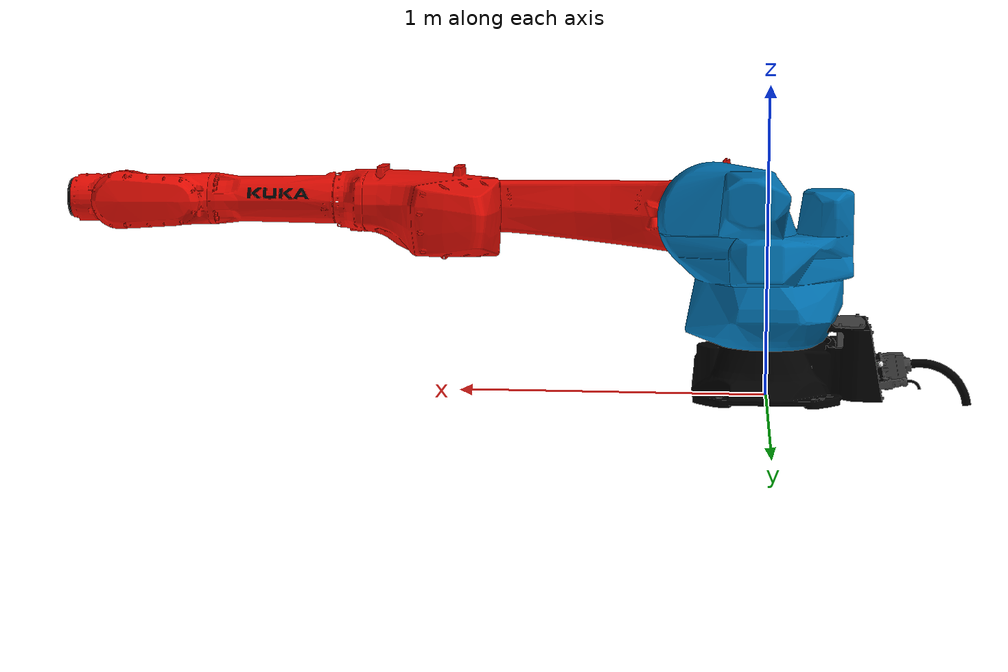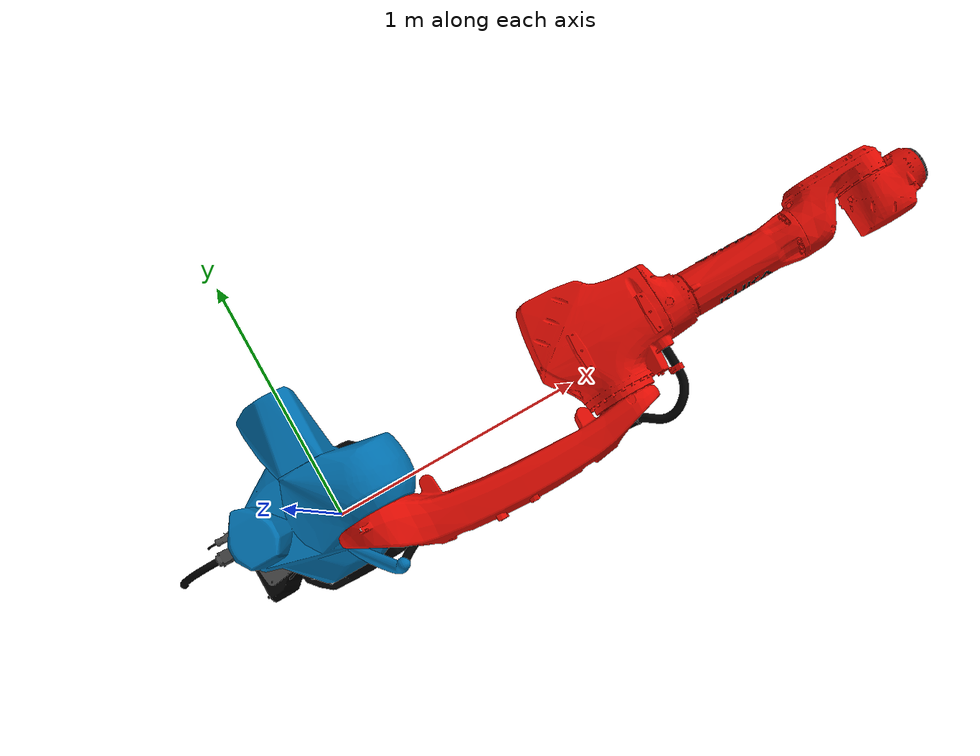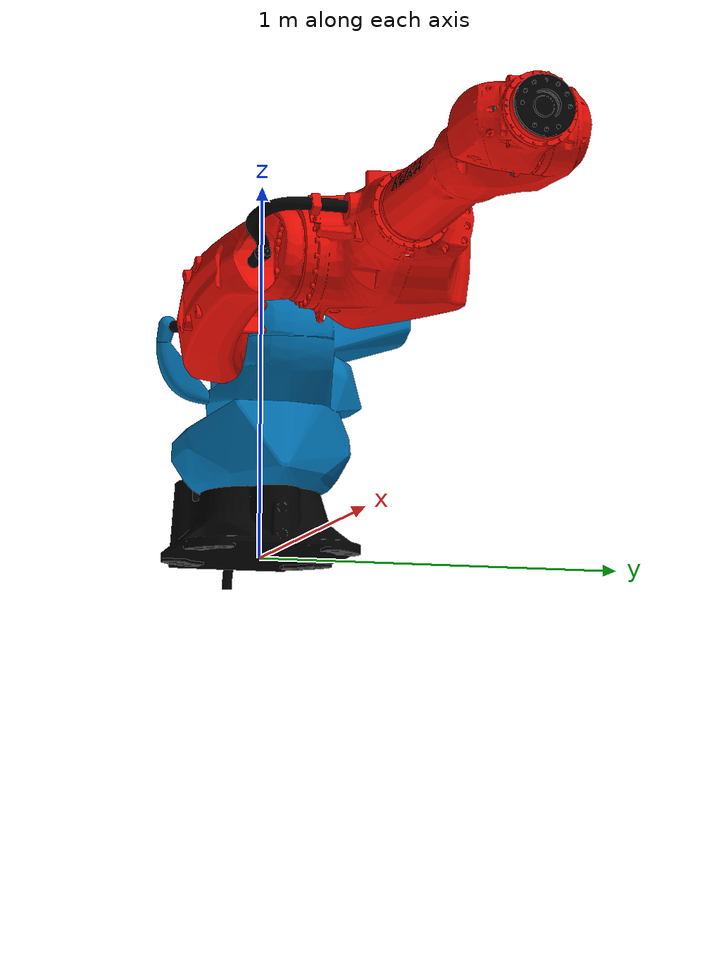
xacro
<?xml version="1.0" encoding="UTF-8"?>
<robot xmlns:xacro="http://ros.org/wiki/xacro" name="kr30_r2100">
  <!-- Import urdf file  -->
  <xacro:include filename="$(find kuka_iontec_support)/urdf/kr30_r2100_macro.xacro"/>
  <xacro:include filename="$(find kuka_iontec_support)/urdf/kr_iontec_ros2_control_macro.xacro"/>
  <!-- Read additional arguments  -->
  <xacro:arg name="driver_version" default="rsi_only"/>
  <xacro:arg name="mode" default="hardware"/>
  <xacro:arg name="gpio_config" default=""/>
  <xacro:arg name="roundtrip_time" default="0"/>
  <xacro:arg name="client_ip" default="0.0.0.0"/>
  <xacro:arg name="client_port" default="59152"/>
  <xacro:arg name="mxa_client_port" default="1337"/>
  <xacro:arg name="controller_ip" default="0.0.0.0"/>
  <xacro:arg name="verify_robot_model" default="true"/>
  <xacro:arg name="prefix" default=""/>
  <xacro:arg name="x" default="0"/>
  <xacro:arg name="y" default="0"/>
  <xacro:arg name="z" default="0"/>
  <xacro:arg name="roll" default="0"/>
  <xacro:arg name="pitch" default="0"/>
  <xacro:arg name="yaw" default="0"/>
  <xacro:arg name="rsi_xml_config_file" default=""/>
  <xacro:kuka_iontec_ros2_control name="$(arg prefix)kr30_r2100" driver_version="$(arg driver_version)" client_ip="$(arg client_ip)" client_port="$(arg client_port)" mxa_client_port="$(arg mxa_client_port)" controller_ip="$(arg controller_ip)" prefix="$(arg prefix)" mode="$(arg mode)" gpio_config="$(arg gpio_config)" roundtrip_time="$(arg roundtrip_time)" verify_robot_model="$(arg verify_robot_model)" rsi_xml_config_file="$(arg rsi_xml_config_file)">
    <ext_axes_ros2_control_joints/>
  </xacro:kuka_iontec_ros2_control>
  <!-- world link -->
  <link name="world"/>
  <!-- robot links, joints -->
  <xacro:kuka_kr30_r2100_robot prefix="$(arg prefix)" package_name="kuka_iontec_support"/>
  <!-- default world - base_link joint -->
  <joint name="$(arg prefix)world-base_link" type="fixed">
    <parent link="world"/>
    <child link="$(arg prefix)base_link"/>
    <origin xyz="$(arg x) $(arg y) $(arg z)" rpy="$(arg roll) $(arg pitch) $(arg yaw)"/>
  </joint>
</robot>

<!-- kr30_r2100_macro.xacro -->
<robot xmlns:xacro="http://www.ros.org/wiki/xacro" name="kr30_r2100">
  <xacro:macro name="kuka_kr30_r2100_robot" params="prefix package_name">
    <link name="${prefix}base"/>
    <link name="${prefix}base_link">
      <collision>
        <geometry>
          <mesh filename="package://${package_name}/meshes/kr30_r2100/collision/base_link.stl"/>
        </geometry>
        <origin rpy="0.0 -0.0 0.0" xyz="0.0 0.0 0.0"/>
      </collision>
      <inertial>
        <inertia ixx="3.21771450042138" ixy="0.0" ixz="0.0" iyy="2.20944166758376" iyz="0.0" izz="3.52194780966785"/>
        <mass value="1.1102E2"/>
        <origin rpy="-0.09552224276473971 0.005165689953881887 1.5692512343174831" xyz="-0.0353407754502021 3.24880558618159E-4 0.169880117603822"/>
      </inertial>
      <visual>
        <geometry>
          <mesh filename="package://${package_name}/meshes/kr30_r2100/visual/base_link.dae"/>
        </geometry>
        <origin rpy="0.0 -0.0 0.0" xyz="0.0 0.0 0.0"/>
      </visual>
    </link>
    <link name="${prefix}flange"/>
    <link name="${prefix}link_1">
      <collision>
        <geometry>
          <mesh filename="package://${package_name}/meshes/kr30_r2100/collision/link_1.stl"/>
        </geometry>
        <origin rpy="-3.141592653589793 0.0 -0.0" xyz="0.0 -2.890166445987754e-17 0.23600000000000002"/>
      </collision>
      <inertial>
        <inertia ixx="5.24555012484584" ixy="0.0" ixz="0.0" iyy="7.5101448256266" iyz="0.0" izz="8.88415818665863"/>
        <mass value="1.72735E2"/>
        <origin rpy="-0.9012026077142694 -0.880518526999153 2.770605684460564" xyz="0.0382984455958549 -0.0308864897096709 -0.235396902770139"/>
      </inertial>
      <visual>
        <geometry>
          <mesh filename="package://${package_name}/meshes/kr30_r2100/visual/link_1.dae"/>
        </geometry>
        <origin rpy="-3.141592653589793 0.0 -0.0" xyz="0.0 -2.890166445987754e-17 0.23600000000000002"/>
      </visual>
    </link>
    <link name="${prefix}link_2">
      <collision>
        <geometry>
          <mesh filename="package://${package_name}/meshes/kr30_r2100/collision/link_2.stl"/>
        </geometry>
        <origin rpy="1.5707963267948968 -0.0 1.5707963267948966" xyz="-0.5750000000000001 -0.175 0.05400000000000006"/>
      </collision>
      <inertial>
        <inertia ixx="15.3115976467419" ixy="0.0" ixz="0.0" iyy="1.25648697469284" iyz="0.0" izz="15.5308363638855"/>
        <mass value="1.0886E2"/>
        <origin rpy="2.0043980356557647 -1.417571259716974 -0.441107113978177" xyz="0.322390685283851 0.0011177475656806899 -0.0921965092779717"/>
      </inertial>
      <visual>
        <geometry>
          <mesh filename="package://${package_name}/meshes/kr30_r2100/visual/link_2.dae"/>
        </geometry>
        <origin rpy="1.5707963267948968 -0.0 1.5707963267948966" xyz="-0.5750000000000001 -0.175 0.05400000000000006"/>
      </visual>
    </link>
    <link name="${prefix}link_3">
      <collision>
        <geometry>
          <mesh filename="package://${package_name}/meshes/kr30_r2100/collision/link_3.stl"/>
        </geometry>
        <origin rpy="1.5707963267948968 -0.0 -0.0" xyz="-0.17500000000000007 1.465 0.15150000000000008"/>
      </collision>
      <inertial>
        <inertia ixx="1.92337293034476" ixy="0.0" ixz="0.0" iyy="1.27849052849714" iyz="0.0" izz="2.39171458731211"/>
        <mass value="7.6987E1"/>
        <origin rpy="-1.4493563584878786 -1.5363130245492544 2.877566531592554" xyz="0.0313301089794381 -0.020586332757478502 0.14882084299946702"/>
      </inertial>
      <visual>
        <geometry>
          <mesh filename="package://${package_name}/meshes/kr30_r2100/visual/link_3.dae"/>
        </geometry>
        <origin rpy="1.5707963267948968 -0.0 -0.0" xyz="-0.17500000000000007 1.465 0.15150000000000008"/>
      </visual>
    </link>
    <link name="${prefix}link_4">
      <collision>
        <geometry>
          <mesh filename="package://${package_name}/meshes/kr30_r2100/collision/link_4.stl"/>
        </geometry>
        <origin rpy="1.8369701987210297e-16 1.5707963267948966 0.0" xyz="-1.5150000000000001 4.351812035153249e-17 0.48305"/>
      </collision>
      <inertial>
        <inertia ixx="0.155169399999395" ixy="0.0" ixz="0.0" iyy="2.40535850557874" iyz="0.0" izz="2.40600523859326"/>
        <mass value="3.6937064569E1"/>
        <origin rpy="0.8285897980910851 -1.4728909399076797 -1.576276607483943" xyz="1.89432198144002E-4 0.024470785786346698 -0.41246255028967"/>
      </inertial>
      <visual>
        <geometry>
          <mesh filename="package://${package_name}/meshes/kr30_r2100/visual/link_4.dae"/>
        </geometry>
        <origin rpy="1.8369701987210297e-16 1.5707963267948966 0.0" xyz="-1.5150000000000001 4.351812035153249e-17 0.48305"/>
      </visual>
    </link>
    <link name="${prefix}link_5">
      <collision>
        <geometry>
          <mesh filename="package://${package_name}/meshes/kr30_r2100/collision/link_5.stl"/>
        </geometry>
        <origin rpy="1.5707963267948968 -3.749399456654644e-33 -6.123233995736766e-17" xyz="-1.2100000000000002 1.515 -0.047949999999999986"/>
      </collision>
      <inertial>
        <inertia ixx="0.104253153076611" ixy="0.0" ixz="0.0" iyy="0.080454547765652" iyz="0.0" izz="0.129775394933814"/>
        <mass value="1.6209E1"/>
        <origin rpy="-1.5546090234283156 -1.0268303292864123 -0.02236297629804863" xyz="0.0338747121969276 4.7815719661916203E-4 -0.0563914652353631"/>
      </inertial>
      <visual>
        <geometry>
          <mesh filename="package://${package_name}/meshes/kr30_r2100/visual/link_5.dae"/>
        </geometry>
        <origin rpy="1.5707963267948968 -3.749399456654644e-33 -6.123233995736766e-17" xyz="-1.2100000000000002 1.515 -0.047949999999999986"/>
      </visual>
    </link>
    <link name="${prefix}link_6">
      <collision>
        <geometry>
          <mesh filename="package://${package_name}/meshes/kr30_r2100/collision/link_6.stl"/>
        </geometry>
        <origin rpy="1.2246467991473532e-16 1.5707963267948966 0.0" xyz="-1.5150000000000001 -4.737419163827789e-17 1.359"/>
      </collision>
      <inertial>
        <inertia ixx="0.00543884122921238" ixy="0.0" ixz="0.0" iyy="0.00497050004638771" iyz="0.0" izz="0.00667989273554355"/>
        <mass value="3.62E0"/>
        <origin rpy="-0.2657207469665607 5.14585534055515E-4 1.571146297496868" xyz="-0.00392541436464088 5.41436464088398E-6 -0.00152140883977901"/>
      </inertial>
      <visual>
        <geometry>
          <mesh filename="package://${package_name}/meshes/kr30_r2100/visual/link_6.dae"/>
        </geometry>
        <origin rpy="1.2246467991473532e-16 1.5707963267948966 0.0" xyz="-1.5150000000000001 -4.737419163827789e-17 1.359"/>
      </visual>
    </link>
    <link name="${prefix}tool0"/>
    <joint name="${prefix}base_link-base" type="fixed">
      <child link="${prefix}base"/>
      <parent link="${prefix}base_link"/>
    </joint>
    <joint name="${prefix}joint_1" type="revolute">
      <axis xyz="0.0 0.0 1.0"/>
      <child link="${prefix}link_1"/>
      <limit effort="5.64E3" lower="-3.2288591125E0" upper="3.2288591125E0" velocity="3.14159265358979E0"/>
      <origin rpy="3.141592653589793 -0.0 0.0" xyz="0.0 0.0 0.23600000000000002"/>
      <parent link="${prefix}base_link"/>
    </joint>
    <joint name="${prefix}joint_2" type="revolute">
      <axis xyz="0.0 0.0 1.0"/>
      <child link="${prefix}link_2"/>
      <limit effort="4.20366504E3" lower="-3.0543261875E0" upper="1.04719755E0" velocity="2.87979326579064E0"/>
      <origin rpy="1.5707963267948966 -0.0 0.0" xyz="0.17500000000000002 0.054 -0.339"/>
      <parent link="${prefix}link_1"/>
    </joint>
    <joint name="${prefix}joint_3" type="revolute">
      <axis xyz="0.0 0.0 1.0"/>
      <child link="${prefix}link_3"/>
      <limit effort="1.42651367E3" lower="-2.0943951E0" upper="2.8797932625E0" velocity="3.14159265358979E0"/>
      <origin rpy="0.0 -0.0 0.0" xyz="0.89 0.0 -0.0975"/>
      <parent link="${prefix}link_2"/>
    </joint>
    <joint name="${prefix}joint_4" type="revolute">
      <axis xyz="0.0 0.0 1.0"/>
      <child link="${prefix}link_4"/>
      <limit effort="4.83452545E2" lower="-3.14159265E0" upper="3.14159265E0" velocity="4.36332312998582E0"/>
      <origin rpy="1.5707963267948966 -0.0 -1.5707963267948966" xyz="0.30805 -0.05 0.1515"/>
      <parent link="${prefix}link_3"/>
    </joint>
    <joint name="${prefix}joint_5" type="revolute">
      <axis xyz="0.0 0.0 1.0"/>
      <child link="${prefix}link_5"/>
      <limit effort="4.41424347E2" lower="-2.1816615625E0" upper="2.1816615625E0" velocity="4.36332312998582E0"/>
      <origin rpy="0.0 1.5707963267948966 1.5707963267948966" xyz="0.0 0.047950000000000007 -0.7269500000000001"/>
      <parent link="${prefix}link_4"/>
    </joint>
    <joint name="${prefix}joint_6" type="revolute">
      <axis xyz="0.0 0.0 1.0"/>
      <child link="${prefix}link_6"/>
      <limit effort="2.59541595E2" lower="-6.108652375E0" upper="6.108652375E0" velocity="6.28318530717959E0"/>
      <origin rpy="1.5707963267948966 -0.0 -1.5707963267948966" xyz="0.149 0.0 -0.047950000000000007"/>
      <parent link="${prefix}link_5"/>
    </joint>
    <joint name="${prefix}link6-flange" type="fixed">
      <child link="${prefix}flange"/>
      <origin rpy="0.0 1.5707963267948966 0.0" xyz="0.0 0.0 -0.036000000000000004"/>
      <parent link="${prefix}link_6"/>
    </joint>
    <joint name="${prefix}link6-tool0" type="fixed">
      <child link="${prefix}tool0"/>
      <origin rpy="3.141592653589793 1.2246467991473532E-16 3.141592653589793" xyz="0.0 0.0 -0.036000000000000004"/>
      <parent link="${prefix}link_6"/>
    </joint>
  </xacro:macro>
</robot>
